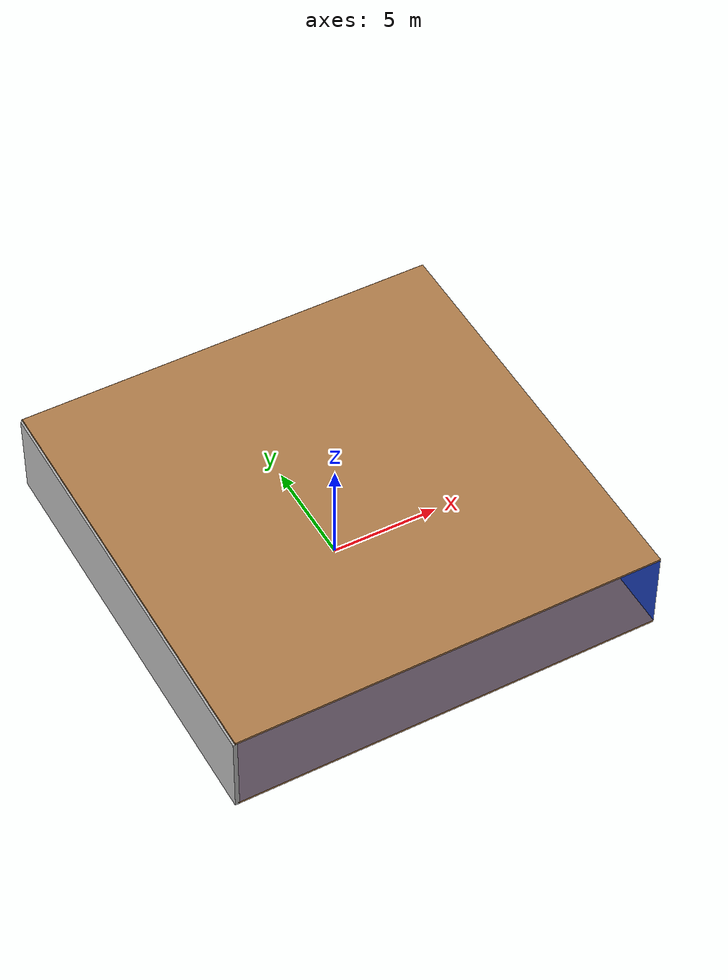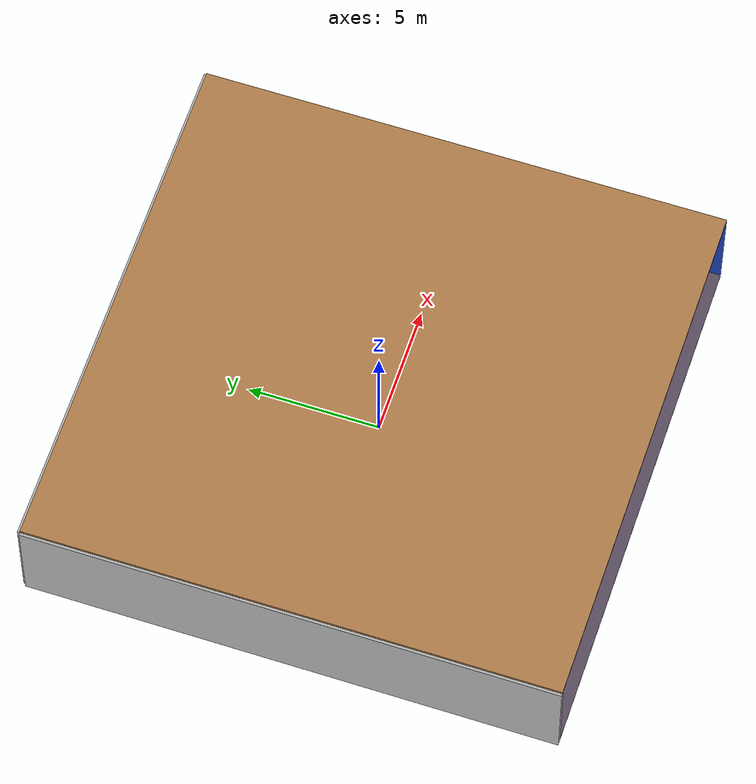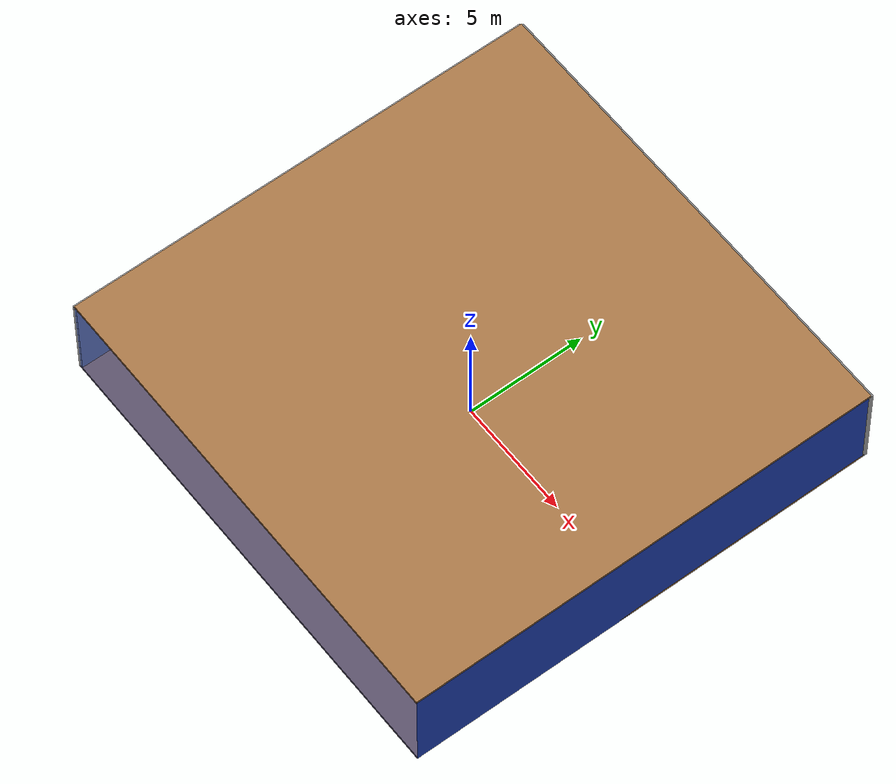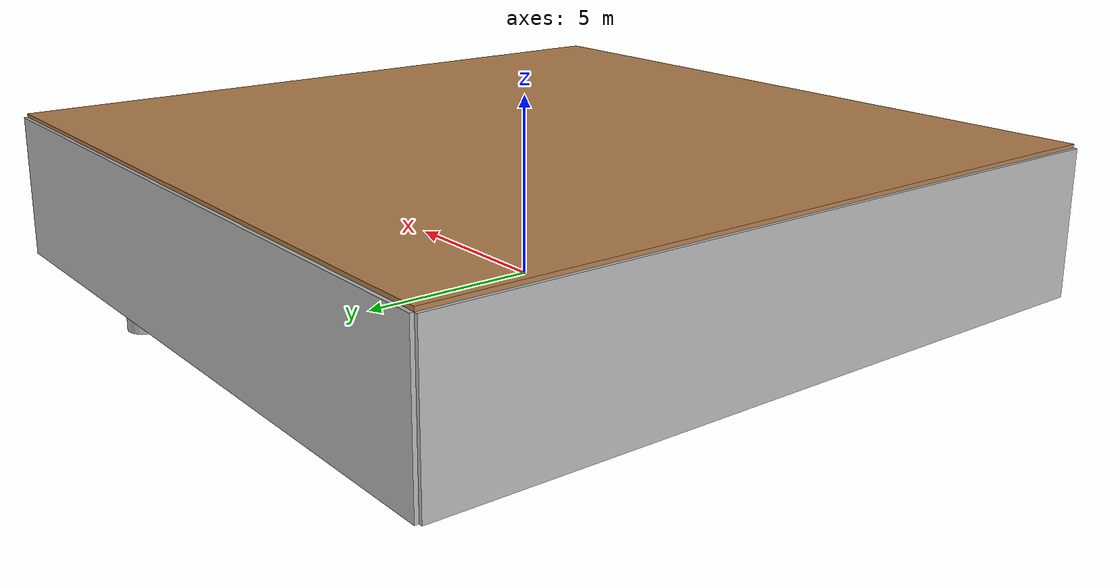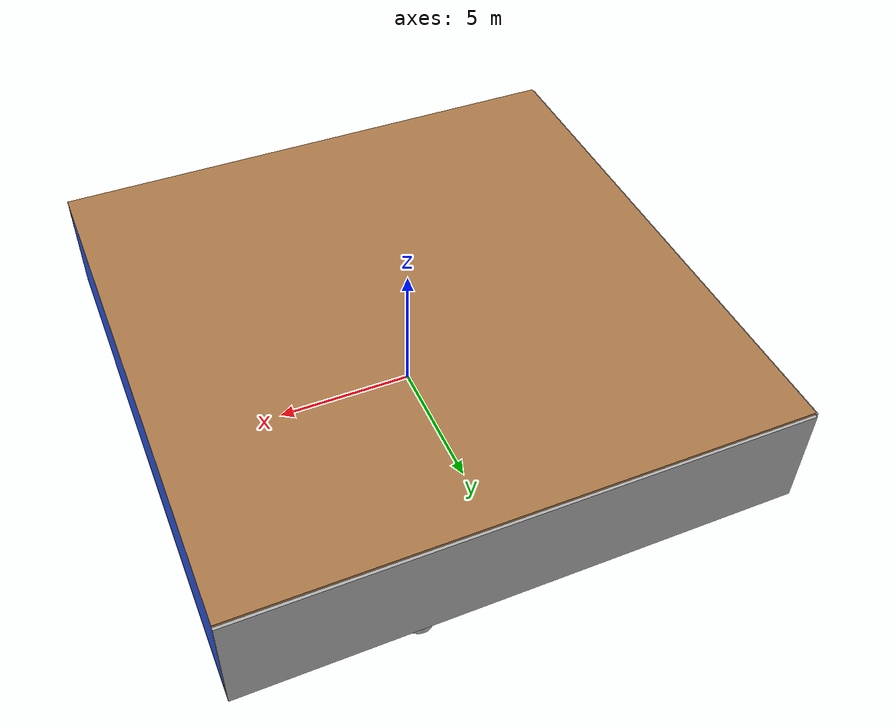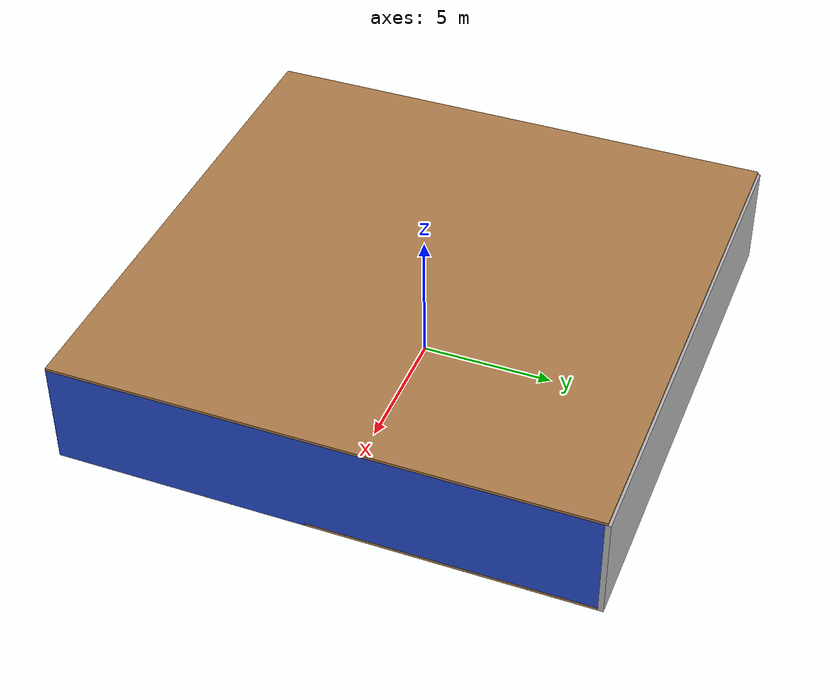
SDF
<sdf version="1.4">
 <world name="default">
  <physics type="ode">
   <max_step_size>0.001</max_step_size>
   <real_time_factor>1</real_time_factor>
   <real_time_update_rate>1000</real_time_update_rate>
   <gravity>0 0 -9.8</gravity>
  </physics>
  <scene><ambient>0.4 0.4 0.4 1</ambient><background>0.7 0.7 0.7 1</background><shadows>1</shadows></scene>
  <model name="Surrounding">
   <static>1</static>
   <link name="Ceiling">
    <collision name="Ceiling_Collision"><geometry><box><size>20 20 0.1</size></box></geometry></collision>
    <visual name="Ceiling_Visual">
     <geometry><box><size>20 20 0.1</size></box></geometry>
     <material>
      <script><uri>file://media/materials/scripts/gazebo.material</uri><name>Gazebo/Wood</name></script>
     </material>
    </visual>
    <pose>0 0 4.05 0 0 0</pose>
   </link>
   <link name="Wall_South">
    <collision name="Wall_South_Collision">
     <geometry><box><size>20 0 4</size></box></geometry>
     <pose>0 0 2 0 -0 0</pose>
    </collision>
    <visual name="Wall_South_Visual">
     <pose>0 0 2 0 -0 0</pose>
     <geometry><box><size>20 0 4</size></box></geometry>
     <material>
      <script><uri>file://media/materials/scripts/gazebo.material</uri><name>Gazebo/BlueTransparent</name></script>
     </material>
    </visual>
    <velocity_decay><linear>0</linear><angular>0</angular></velocity_decay>
    <pose>0 -10 0 0 -0 0</pose>
   </link>
   <link name="Wall_East">
    <collision name="Wall_21_Collision">
     <geometry><box><size>20 0 4</size></box></geometry>
     <pose>0 0 2 0 -0 0</pose>
    </collision>
    <visual name="Wall_21_Visual">
     <pose>0 0 2 0 -0 0</pose>
     <geometry><box><size>20 0 4</size></box></geometry>
     <material>
      <script><uri>file://media/materials/scripts/gazebo.material</uri><name>Gazebo/Blue</name></script>
     </material>
    </visual>
    <velocity_decay><linear>0</linear><angular>0</angular></velocity_decay>
    <pose>10 0 0 0 -0 1.5708</pose>
   </link>
   <link name="Wall_North">
    <collision name="Wall_22_Collision">
     <geometry><box><size>20 0.2 4</size></box></geometry>
     <pose>0 0 2 0 -0 0</pose>
    </collision>
    <visual name="Wall_22_Visual">
     <pose>0 0 2 0 -0 0</pose>
     <geometry><box><size>20 0.2 4</size></box></geometry>
     <material>
      <script><uri>file://media/materials/scripts/gazebo.material</uri><name>Gazebo/PioneerBody</name></script>
     </material>
    </visual>
    <velocity_decay><linear>0</linear><angular>0</angular></velocity_decay>
    <pose>0 10 0 0 -0 0</pose>
   </link>
   <link name="Wall_West">
    <collision name="Wall_23_Collision">
     <geometry><box><size>20 0.2 4</size></box></geometry>
     <pose>0 0 2 0 -0 0</pose>
    </collision>
    <visual name="Wall_23_Visual">
     <pose>0 0 2 0 -0 0</pose>
     <geometry><box><size>20 0.2 4</size></box></geometry>
     <material>
      <script><uri>file://media/materials/scripts/gazebo.material</uri><name>Gazebo/CloudySky</name></script>
     </material>
    </visual>
    <velocity_decay><linear>0</linear><angular>0</angular></velocity_decay>
    <pose>-10 0 0 0 0 -1.5708</pose>
   </link>
   <link name="Ground_link">
    <collision name="collision">
     <pose>0 0 .05 0 -0 0</pose>
     <geometry><box><size>20 20 0.1</size></box></geometry>
    </collision>
    <visual name="visual">
     <pose>0 0 .05 0 -0 0</pose>
     <geometry><box><size>20 20 0.1</size></box></geometry>
     <material>
      <script><uri>file://media/materials/scripts/gazebo.material</uri><name>Gazebo/Wood</name></script>
     </material>
    </visual>
   </link>
   <static>1</static>
  </model>
  <spherical_coordinates>
   <surface_model>EARTH_WGS84</surface_model>
   <latitude_deg>0</latitude_deg>
   <longitude_deg>0</longitude_deg>
   <elevation>0</elevation>
   <heading_deg>0</heading_deg>
  </spherical_coordinates>
  <light name="lightball_0" type="diffuse">
   <diffuse>0.8 0.8 0.8 1</diffuse>
   <specular>0.2 0.2 0.2 1</specular>
   <attenuation>
    <range>100</range>
    <constant>0.7</constant>
    <linear>0.01</linear>
    <quadratic>0.001</quadratic>
   </attenuation>
   <direction>-0.5 0.1 -0.9</direction>
   <pose>-2.17849920291 3.3475354965 0.886444363359 0 0 0</pose>
  </light>
  <light name="lightball_1" type="diffuse">
   <diffuse>0.8 0.8 0.8 1</diffuse>
   <specular>0.2 0.2 0.2 1</specular>
   <attenuation>
    <range>100</range>
    <constant>0.7</constant>
    <linear>0.01</linear>
    <quadratic>0.001</quadratic>
   </attenuation>
   <direction>-0.5 0.1 -0.9</direction>
   <pose>-8.49418500844 7.86603422096 3.24677553824 0 0 0</pose>
  </light>
  <light name="lightball_2" type="diffuse">
   <diffuse>0.8 0.8 0.8 1</diffuse>
   <specular>0.2 0.2 0.2 1</specular>
   <attenuation>
    <range>100</range>
    <constant>0.7</constant>
    <linear>0.01</linear>
    <quadratic>0.001</quadratic>
   </attenuation>
   <direction>-0.5 0.1 -0.9</direction>
   <pose>-3.9202951228 -8.01874617943 1.58481596011 0 0 0</pose>
  </light>
  <light name="lightball_3" type="diffuse">
   <diffuse>0.8 0.8 0.8 1</diffuse>
   <specular>0.2 0.2 0.2 1</specular>
   <attenuation>
    <range>100</range>
    <constant>0.7</constant>
    <linear>0.01</linear>
    <quadratic>0.001</quadratic>
   </attenuation>
   <direction>-0.5 0.1 -0.9</direction>
   <pose>-0.751243048097 0.0642510892811 1.34266082205 0 0 0</pose>
  </light>
  <light name="lightball_4" type="diffuse">
   <diffuse>0.8 0.8 0.8 1</diffuse>
   <specular>0.2 0.2 0.2 1</specular>
   <attenuation>
    <range>100</range>
    <constant>0.7</constant>
    <linear>0.01</linear>
    <quadratic>0.001</quadratic>
   </attenuation>
   <direction>-0.5 0.1 -0.9</direction>
   <pose>0.496588129374 3.64157084174 0.763405377606 0 0 0</pose>
  </light>
  <light name="lightball_5" type="diffuse">
   <diffuse>0.8 0.8 0.8 1</diffuse>
   <specular>0.2 0.2 0.2 1</specular>
   <attenuation>
    <range>100</range>
    <constant>0.7</constant>
    <linear>0.01</linear>
    <quadratic>0.001</quadratic>
   </attenuation>
   <direction>-0.5 0.1 -0.9</direction>
   <pose>7.68026340786 -2.22278419931 3.81307022255 0 0 0</pose>
  </light>
  <light name="lightball_6" type="diffuse">
   <diffuse>0.8 0.8 0.8 1</diffuse>
   <specular>0.2 0.2 0.2 1</specular>
   <attenuation>
    <range>100</range>
    <constant>0.7</constant>
    <linear>0.01</linear>
    <quadratic>0.001</quadratic>
   </attenuation>
   <direction>-0.5 0.1 -0.9</direction>
   <pose>-7.98626239379 7.09017001355 2.52817570791 0 0 0</pose>
  </light>
  <light name="lightball_7" type="diffuse">
   <diffuse>0.8 0.8 0.8 1</diffuse>
   <specular>0.2 0.2 0.2 1</specular>
   <attenuation>
    <range>100</range>
    <constant>0.7</constant>
    <linear>0.01</linear>
    <quadratic>0.001</quadratic>
   </attenuation>
   <direction>-0.5 0.1 -0.9</direction>
   <pose>4.90091442031 5.16423742419 2.97072836922 0 0 0</pose>
  </light>
  <light name="lightball_8" type="diffuse">
   <diffuse>0.8 0.8 0.8 1</diffuse>
   <specular>0.2 0.2 0.2 1</specular>
   <attenuation>
    <range>100</range>
    <constant>0.7</constant>
    <linear>0.01</linear>
    <quadratic>0.001</quadratic>
   </attenuation>
   <direction>-0.5 0.1 -0.9</direction>
   <pose>-1.22223298484 -2.63901769707 2.32491371377 0 0 0</pose>
  </light>
  <light name="lightball_9" type="diffuse">
   <diffuse>0.8 0.8 0.8 1</diffuse>
   <specular>0.2 0.2 0.2 1</specular>
   <attenuation>
    <range>100</range>
    <constant>0.7</constant>
    <linear>0.01</linear>
    <quadratic>0.001</quadratic>
   </attenuation>
   <direction>-0.5 0.1 -0.9</direction>
   <pose>-0.457292443696 0.439350994032 2.98885585358 0 0 0</pose>
  </light>
  <light name="lightball_10" type="diffuse">
   <diffuse>0.8 0.8 0.8 1</diffuse>
   <specular>0.2 0.2 0.2 1</specular>
   <attenuation>
    <range>100</range>
    <constant>0.7</constant>
    <linear>0.01</linear>
    <quadratic>0.001</quadratic>
   </attenuation>
   <direction>-0.5 0.1 -0.9</direction>
   <pose>5.80943835479 -9.65470712052 2.76412864886 0 0 0</pose>
  </light>
  <include><uri>model://table</uri><pose>-3.8481266292 -1.14720424154 0 0 0 2.55767694357</pose></include>
  <include>
   <uri>model://robocup_3Dsim_goal</uri>
   <pose>-4.6324029126 4.47780964375 0 0 0 2.88462759524</pose>
  </include>
  <include>
   <uri>model://construction_cone</uri>
   <pose>2.10588284206 5.07291621891 0 0 0 1.04763150029</pose>
  </include>
  <include>
   <uri>model://textured_shapes</uri>
   <pose>4.34457732099 8.17317917481 0 0 0 0.536248742028</pose>
  </include>
  <include><uri>model://cabinet</uri><pose>7.17212704157 3.83467290173 0 0 0 0.126415372686</pose></include>
 </world>
</sdf>

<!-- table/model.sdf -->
<sdf version="1.5">
  <model name="table">
    <static>true</static>
    <link name="link">
      <collision name="surface">
        <pose>0 0 1.0 0 0 0</pose>
        <geometry>
          <box>
            <size>1.5 0.8 0.03</size>
          </box>
        </geometry>
        <surface>
          <friction>
            <ode>
              <mu>0.6</mu>
              <mu2>0.6</mu2>
            </ode>
          </friction>
        </surface>
      </collision>
      <visual name="visual1">
        <pose>0 0 1.0 0 0 0</pose>
        <geometry>
          <box>
            <size>1.5 0.8 0.03</size>
          </box>
        </geometry>
        <material>
          <script>
            <uri>model://media/materials/scripts/gazebo.material</uri>
            <name>Gazebo/Wood</name>
          </script>
        </material>
      </visual>
      <collision name="front_left_leg">
        <pose>0.68 0.38 0.5 0 0 0</pose>
        <geometry>
          <cylinder>
            <radius>0.02</radius>
            <length>1.0</length>
          </cylinder>
        </geometry>
      </collision>
      <visual name="front_left_leg">
        <pose>0.68 0.38 0.5 0 0 0</pose>
        <geometry>
          <cylinder>
            <radius>0.02</radius>
            <length>1.0</length>
          </cylinder>
        </geometry>
        <material>
          <script>
            <uri>model://media/materials/scripts/gazebo.material</uri>
            <name>Gazebo/Grey</name>
          </script>
        </material>
      </visual>
      <collision name="front_right_leg">
        <pose>0.68 -0.38 0.5 0 0 0</pose>
        <geometry>
          <cylinder>
            <radius>0.02</radius>
            <length>1.0</length>
          </cylinder>
        </geometry>
      </collision>
      <visual name="front_right_leg">
        <pose>0.68 -0.38 0.5 0 0 0</pose>
        <geometry>
          <cylinder>
            <radius>0.02</radius>
            <length>1.0</length>
          </cylinder>
        </geometry>
        <material>
          <script>
            <uri>model://media/materials/scripts/gazebo.material</uri>
            <name>Gazebo/Grey</name>
          </script>
        </material>
      </visual>
      <collision name="back_right_leg">
        <pose>-0.68 -0.38 0.5 0 0 0</pose>
        <geometry>
          <cylinder>
            <radius>0.02</radius>
            <length>1.0</length>
          </cylinder>
        </geometry>
      </collision>
      <visual name="back_right_leg">
        <pose>-0.68 -0.38 0.5 0 0 0</pose>
        <geometry>
          <cylinder>
            <radius>0.02</radius>
            <length>1.0</length>
          </cylinder>
        </geometry>
        <material>
          <script>
            <uri>model://media/materials/scripts/gazebo.material</uri>
            <name>Gazebo/Grey</name>
          </script>
        </material>
      </visual>
      <collision name="back_left_leg">
        <pose>-0.68 0.38 0.5 0 0 0</pose>
        <geometry>
          <cylinder>
            <radius>0.02</radius>
            <length>1.0</length>
          </cylinder>
        </geometry>
      </collision>
      <visual name="back_left_leg">
        <pose>-0.68 0.38 0.5 0 0 0</pose>
        <geometry>
          <cylinder>
            <radius>0.02</radius>
            <length>1.0</length>
          </cylinder>
        </geometry>
        <material>
          <script>
            <uri>model://media/materials/scripts/gazebo.material</uri>
            <name>Gazebo/Grey</name>
          </script>
        </material>
      </visual>
    </link>
  </model>
</sdf>

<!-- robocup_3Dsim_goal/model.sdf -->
<sdf version="1.5">
  <model name="robocup_3d_goal">
    <static>true</static>
    <link name="left_post">
      <pose>0 1.05 0.45 0 0 0</pose>
      <collision name="collision">
        <geometry>
          <cylinder>
            <radius>0.05</radius>
            <length>0.9</length>
          </cylinder>
        </geometry>
      </collision>
      <visual name="visual">
        <geometry>
          <cylinder>
            <radius>0.05</radius>
            <length>0.9</length>
          </cylinder>
        </geometry>
        <material>
          <script>
            <uri>file://media/materials/scripts/gazebo.material</uri>
            <name>Gazebo/ZincYellow</name>
          </script>
        </material>
      </visual>
    </link>
    <link name="left_support_horiz_lower">
      <pose>0.30 1.05 0.01 0 0 0</pose>
      <collision name="collision">
        <geometry>
          <box>
            <size>0.50 0.02 0.02</size>
          </box>
        </geometry>
      </collision>
      <visual name="visual">
        <geometry>
          <box>
            <size>0.50 0.02 0.02</size>
          </box>
        </geometry>
        <material>
          <script>
            <uri>file://media/materials/scripts/gazebo.material</uri>
            <name>Gazebo/White</name>
          </script>
        </material>
      </visual>
    </link>
    <link name="left_support_horiz_upper">
      <pose>0.30 1.05 0.79 0 0 0</pose>
      <collision name="collision">
        <geometry>
          <box>
            <size>0.50 0.02 0.02</size>
          </box>
        </geometry>
      </collision>
      <visual name="visual">
        <geometry>
          <box>
            <size>0.50 0.02 0.02</size>
          </box>
        </geometry>
        <material>
          <script>
            <uri>file://media/materials/scripts/gazebo.material</uri>
            <name>Gazebo/White</name>
          </script>
        </material>
      </visual>
    </link>
    <link name="left_support_vertical">
      <pose>0.56 1.05 0.4 0 1.5708 0</pose>
      <collision name="collision">
        <geometry>
          <box>
            <size>0.80 0.02 0.02</size>
          </box>
        </geometry>
      </collision>
      <visual name="visual">
        <geometry>
          <box>
            <size>0.80 0.02 0.02</size>
          </box>
        </geometry>
        <material>
          <script>
            <uri>file://media/materials/scripts/gazebo.material</uri>
            <name>Gazebo/White</name>
          </script>
        </material>
      </visual>
    </link>
    <link name="right_support_horiz_lower">
      <pose>0.30 -1.05 0.01 0 0 0</pose>
      <collision name="collision">
        <geometry>
          <box>
            <size>0.50 0.02 0.02</size>
          </box>
        </geometry>
      </collision>
      <visual name="visual">
        <geometry>
          <box>
            <size>0.50 0.02 0.02</size>
          </box>
        </geometry>
        <material>
          <script>
            <uri>file://media/materials/scripts/gazebo.material</uri>
            <name>Gazebo/White</name>
          </script>
        </material>
      </visual>
    </link>
    <link name="right_support_horiz_upper">
      <pose>0.30 -1.05 0.79 0 0 0</pose>
      <collision name="collision">
        <geometry>
          <box>
            <size>0.50 0.02 0.02</size>
          </box>
        </geometry>
      </collision>
      <visual name="visual">
        <geometry>
          <box>
            <size>0.50 0.02 0.02</size>
          </box>
        </geometry>
        <material>
          <script>
            <uri>file://media/materials/scripts/gazebo.material</uri>
            <name>Gazebo/White</name>
          </script>
        </material>
      </visual>
    </link>
    <link name="right_support_vertical">
      <pose>0.56 -1.05 0.4 0 1.5708 0</pose>
      <collision name="collision">
        <geometry>
          <box>
            <size>0.80 0.02 0.02</size>
          </box>
        </geometry>
      </collision>
      <visual name="visual">
        <geometry>
          <box>
            <size>0.80 0.02 0.02</size>
          </box>
        </geometry>
        <material>
          <script>
            <uri>file://media/materials/scripts/gazebo.material</uri>
            <name>Gazebo/White</name>
          </script>
        </material>
      </visual>
    </link>
    <link name="center_support_horiz_lower">
      <pose>0.56 0 0.01 0 1.5708 0</pose>
      <collision name="collision">
        <geometry>
          <box>
            <size>0.02 2.08 0.02</size>
          </box>
        </geometry>
      </collision>
      <visual name="visual">
        <geometry>
          <box>
            <size>0.02 2.08 0.02</size>
          </box>
        </geometry>
        <material>
          <script>
            <uri>file://media/materials/scripts/gazebo.material</uri>
            <name>Gazebo/White</name>
          </script>
        </material>
      </visual>
    </link>
    <link name="center_support_horiz_upper">
      <pose>0.56 0 0.79 0 1.5708 0</pose>
      <collision name="collision">
        <geometry>
          <box>
            <size>0.02 2.08 0.02</size>
          </box>
        </geometry>
      </collision>
      <visual name="visual">
        <geometry>
          <box>
            <size>0.02 2.08 0.02</size>
          </box>
        </geometry>
        <material>
          <script>
            <uri>file://media/materials/scripts/gazebo.material</uri>
            <name>Gazebo/White</name>
          </script>
        </material>
      </visual>
    </link>
    <link name="right_post">
      <pose>0 -1.05 0.45 0 0 0</pose>
      <collision name="collision">
        <geometry>
          <cylinder>
            <radius>0.05</radius>
            <length>0.9</length>
          </cylinder>
        </geometry>
      </collision>
      <visual name="visual">
        <geometry>
          <cylinder>
            <radius>0.05</radius>
            <length>0.9</length>
          </cylinder>
        </geometry>
        <material>
          <script>
            <uri>file://media/materials/scripts/gazebo.material</uri>
            <name>Gazebo/ZincYellow</name>
          </script>
        </material>
      </visual>
    </link>
    <link name="crossbar">
      <pose>0 0 0.85 1.57 1.57 0</pose>
      <collision name="collision">
        <geometry>
          <cylinder>
            <radius>0.05</radius>
            <length>2.0</length>
          </cylinder>
        </geometry>
      </collision>
      <visual name="visual">
        <geometry>
          <cylinder>
            <radius>0.05</radius>
            <length>2.0</length>
          </cylinder>
        </geometry>
        <material>
          <script>
            <uri>file://media/materials/scripts/gazebo.material</uri>
            <name>Gazebo/ZincYellow</name>
          </script>
        </material>
      </visual>
    </link>
    <link name="center_net">
      <pose>0.56 0 0.40 0 0 0</pose>
      <collision name="collision">
        <geometry>
          <box>
            <size>0.01 2.1 0.80</size>
          </box>
        </geometry>
      </collision>
      <visual name="visual">
        <geometry>
          <box>
            <size>0.01 2.1 0.80</size>
          </box>
        </geometry>
        <material>
          <script>
            <uri>model://../model_source/models/robocup09_spl_field/materials/scripts/</uri>
            <uri>model://../model_source/models/robocup09_spl_field/materials/textures/</uri>
            <name>RoboCup/Net</name>
          </script>
        </material>
      </visual>
    </link>
    <link name="left_net">
      <pose>0.30 1.05 0.40 0 0 0</pose>
      <collision name="collision">
        <geometry>
          <box>
            <size>0.50 0.01 0.76</size>
          </box>
        </geometry>
      </collision>
      <visual name="visual">
        <geometry>
          <box>
            <size>0.50 0.01 0.76</size>
          </box>
        </geometry>
        <material>
          <script>
            <uri>model://../model_source/models/robocup09_spl_field/materials/scripts/</uri>
            <uri>model://../model_source/models/robocup09_spl_field/materials/textures/</uri>
            <name>RoboCup/Net</name>
          </script>
        </material>
      </visual>
    </link>
    <link name="right_net">
      <pose>0.30 -1.05 0.40 0 0 0</pose>
      <collision name="collision">
        <geometry>
          <box>
            <size>0.50 0.01 0.76</size>
          </box>
        </geometry>
      </collision>
      <visual name="visual">
        <geometry>
          <box>
            <size>0.50 0.01 0.76</size>
          </box>
        </geometry>
        <material>
          <script>
            <uri>model://../model_source/models/robocup09_spl_field/materials/scripts/</uri>
            <uri>model://../model_source/models/robocup09_spl_field/materials/textures/</uri>
            <name>RoboCup/Net</name>
          </script>
        </material>
      </visual>
    </link>
  </model>
</sdf>

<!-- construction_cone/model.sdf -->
<sdf version="1.5">
  <model name="Construction Cone">
    <link name="link">
      <collision name="collision">
        <geometry>
          <mesh>
            <scale>10 10 10</scale>
            <uri>file://isr-testbed/construction_cone/meshes/construction_cone.dae</uri>
          </mesh>
        </geometry>
      </collision>
      <visual name="visual">
        <geometry>
          <mesh>
            <scale>10 10 10</scale>
            <uri>file://isr-testbed/construction_cone/meshes/construction_cone.dae</uri>
          </mesh>
        </geometry>
      </visual>
    </link>
  </model>
</sdf>

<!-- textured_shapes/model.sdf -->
<sdf version="1.6">
  <model name="textured_shapes">
    <pose>0 0 0.5 0 0 0</pose>
    <link name="box">
      <pose>0 -1.5 0 0 0 0</pose>
      <collision name="collision">
        <geometry>
          <box>
            <size>1 1 1</size>
          </box>
        </geometry>
      </collision>
      <visual name="visual">
        <geometry>
          <box>
            <size>1 1 1</size>
          </box>
        </geometry>
        <material>
          <script>
            <uri>model://../model_source/models/textured_shapes/materials/scripts</uri>
            <uri>model://../model_source/models/textured_shapes/materials/textures</uri>
            <name>TexturedShape/Squares</name>
          </script>
        </material>
      </visual>
    </link>
    <link name="sphere">
      <collision name="collision">
        <geometry>
          <sphere>
            <radius>0.5</radius>
          </sphere>
        </geometry>
      </collision>
      <visual name="visual">
        <geometry>
          <sphere>
            <radius>0.5</radius>
          </sphere>
        </geometry>
        <material>
          <script>
            <uri>model://../model_source/models/textured_shapes/materials/scripts</uri>
            <uri>model://../model_source/models/textured_shapes/materials/textures</uri>
            <name>TexturedShape/Squares</name>
          </script>
        </material>
      </visual>
    </link>
    <link name="cylinder">
      <pose>0 1.5 0 0 0 0</pose>
      <collision name="collision">
        <geometry>
          <cylinder>
            <radius>0.5</radius>
            <length>1</length>
          </cylinder>
        </geometry>
      </collision>
      <visual name="visual">
        <geometry>
          <cylinder>
            <radius>0.5</radius>
            <length>1</length>
          </cylinder>
        </geometry>
        <material>
          <script>
            <uri>model://../model_source/models/textured_shapes/materials/scripts</uri>
            <uri>model://../model_source/models/textured_shapes/materials/textures</uri>
            <name>TexturedShape/Squares</name>
          </script>
        </material>
      </visual>
    </link>
  </model>
</sdf>

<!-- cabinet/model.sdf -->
<sdf version="1.5">
  <model name="cabinet">
    <static>true</static>
    <link name="cabinet_bottom_plate">
      <inertial>
        <pose>0 0 -1 0 0 0</pose>
        <inertia>
          <ixx>2.050000</ixx>
          <ixy>0</ixy>
          <ixz>0</ixz>
          <iyy>2.050000</iyy>
          <iyz>0</iyz>
          <izz>2.050000</izz>
        </inertia>
        <mass>25.000000</mass>
      </inertial>
      <collision name="cabinet_bottom_plate_geom">
        <pose>0 0 0.010000 0 0 0</pose>
        <geometry>
          <box>
            <size>0.450000 0.450000 0.020000</size>
          </box>
        </geometry>
      </collision>
      <visual name="cabinet_bottom_plate_geom_visual">
        <pose>0 0 0.010000 0 0 0</pose>
        <geometry>
          <box>
            <size>0.450000 0.450000 0.020000</size>
          </box>
        </geometry>
        <material>
          <script>
            <uri>model://media/materials/scripts/gazebo.material</uri>
            <name>Gazebo/Wood</name>
          </script>
        </material>
      </visual>
      <collision name="cabinet_bottom_plate_geom_cabinet_back_plate">
        <pose>0.235000 0 0.510000 0 0 0</pose>
        <geometry>
          <box>
            <size>0.020000 0.450000 1.020000</size>
          </box>
        </geometry>
      </collision>
      <visual name="cabinet_bottom_plate_geom_cabinet_back_plate_visual">
        <pose>0.235000 0 0.510000 0 0 0</pose>
        <geometry>
          <box>
            <size>0.020000 0.450000 1.020000</size>
          </box>
        </geometry>
        <material>
          <script>
            <uri>model://media/materials/scripts/gazebo.material</uri>
            <name>Gazebo/Wood</name>
          </script>
        </material>
      </visual>
      <collision name="cabinet_bottom_plate_geom_cabinet_left_plate">
        <pose>0 0.235000 0.510000 0 0 0</pose>
        <geometry>
          <box>
            <size>0.450000 0.020000 1.020000</size>
          </box>
        </geometry>
      </collision>
      <visual name="cabinet_bottom_plate_geom_cabinet_left_plate_visual">
        <pose>0 0.235000 0.510000 0 0 0</pose>
        <geometry>
          <box>
            <size>0.450000 0.020000 1.020000</size>
          </box>
        </geometry>
        <material>
          <script>
            <uri>model://media/materials/scripts/gazebo.material</uri>
            <name>Gazebo/Wood</name>
          </script>
        </material>
      </visual>
      <collision name="cabinet_bottom_plate_geom_cabinet_middle_plate">
        <pose>0 0 0.510000 0 0 0</pose>
        <geometry>
          <box>
            <size>0.450000 0.450000 0.020000</size>
          </box>
        </geometry>
      </collision>
      <visual name="cabinet_bottom_plate_geom_cabinet_middle_plate_visual">
        <pose>0 0 0.510000 0 0 0</pose>
        <geometry>
          <box>
            <size>0.450000 0.450000 0.020000</size>
          </box>
        </geometry>
        <material>
          <script>
            <uri>model://media/materials/scripts/gazebo.material</uri>
            <name>Gazebo/Wood</name>
          </script>
        </material>
      </visual>
      <collision name="cabinet_bottom_plate_geom_cabinet_right_plate">
        <pose>0 -0.235000 0.510000 0 0 0</pose>
        <geometry>
          <box>
            <size>0.450000 0.020000 1.020000</size>
          </box>
        </geometry>
      </collision>
      <visual name="cabinet_bottom_plate_geom_cabinet_right_plate_visual">
        <pose>0 -0.235000 0.510000 0 0 0</pose>
        <geometry>
          <box>
            <size>0.450000 0.020000 1.020000</size>
          </box>
        </geometry>
        <material>
          <script>
            <uri>model://media/materials/scripts/gazebo.material</uri>
            <name>Gazebo/Wood</name>
          </script>
        </material>
      </visual>
      <collision name="cabinet_bottom_plate_geom_cabinet_top_plate">
        <pose>0 0 1.010000 0 0 0</pose>
        <geometry>
          <box>
            <size>0.450000 0.450000 0.020000</size>
          </box>
        </geometry>
      </collision>
      <visual name="cabinet_bottom_plate_geom_cabinet_top_plate_visual">
        <pose>0 0 1.010000 0 0 0</pose>
        <geometry>
          <box>
            <size>0.450000 0.450000 0.020000</size>
          </box>
        </geometry>
        <material>
          <script>
            <uri>model://media/materials/scripts/gazebo.material</uri>
            <name>Gazebo/Wood</name>
          </script>
        </material>
      </visual>
    </link>
  </model>
</sdf>
